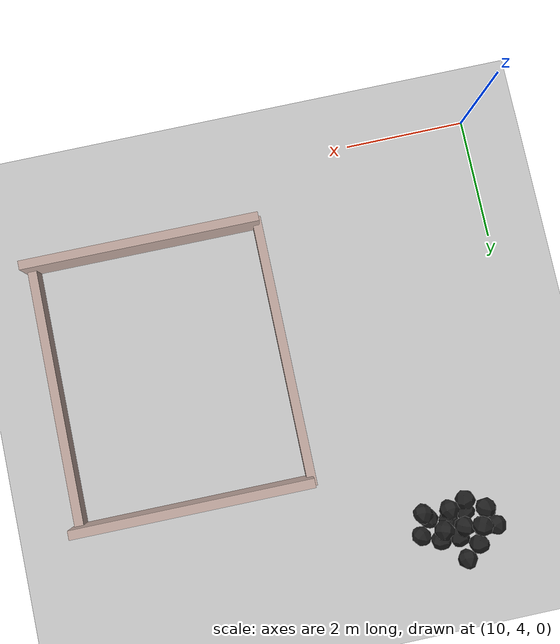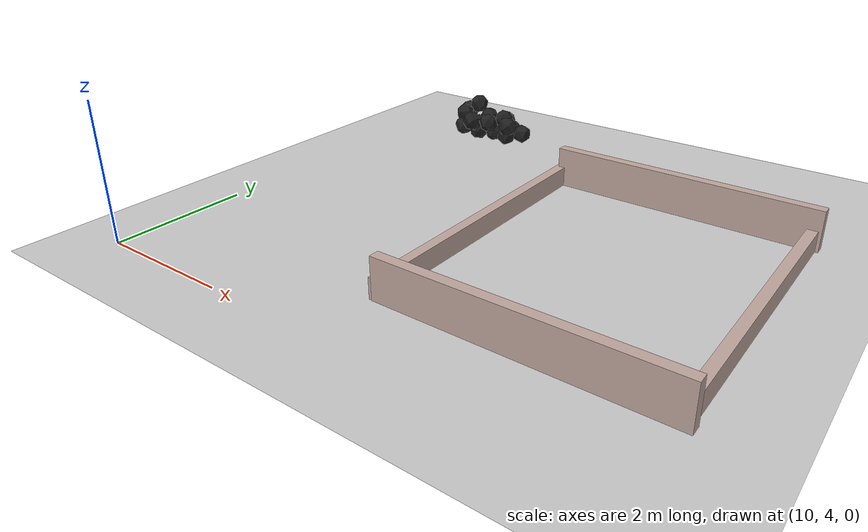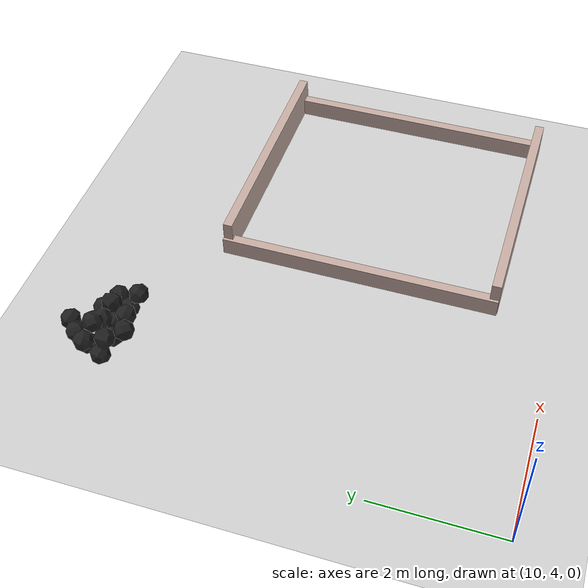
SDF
<sdf version="1.7">
 <world name="default">
  <model name="ground_plane">
   <static>1</static>
   <link name="link">
    <collision name="collision">
     <geometry><plane><normal>0 0 1</normal><size>100 100</size></plane></geometry>
     <surface><friction><ode><mu>100</mu><mu2>50</mu2></ode></friction></surface>
    </collision>
    <visual name="visual">
     <cast_shadows>0</cast_shadows>
     <geometry><plane><normal>0 0 1</normal><size>100 100</size></plane></geometry>
     <material>
      <script><uri>file://media/materials/scripts/gazebo.material</uri><name>Gazebo/Grey</name></script>
     </material>
    </visual>
   </link>
  </model>
  <model name="haoduomiantiaa_1">
   <link name="link_0">
    <inertial>
     <mass>0.2</mass>
     <inertia>
      <ixx>0.166667</ixx>
      <ixy>0</ixy>
      <ixz>0</ixz>
      <iyy>0.166667</iyy>
      <iyz>0</iyz>
      <izz>0.166667</izz>
     </inertia>
    </inertial>
    <visual name="visual">
     <geometry>
      <mesh>
       <uri>/home/lihaoyang/catkin_ws/src/pudong_gazebo/world/stl/haoduomianti.stl</uri>
       <scale>1 1 1</scale>
      </mesh>
     </geometry>
     <material>
      <lighting>1</lighting>
      <script><uri>file://media/materials/scripts/gazebo.material</uri><name>Gazebo/Black</name></script>
      <shader type="pixel"><normal_map>__default__</normal_map></shader>
      <ambient>0.3 0.3 0.3 1</ambient>
      <diffuse>0.7 0.7 0.7 1</diffuse>
      <specular>0.01 0.01 0.01 1</specular>
      <emissive>0 0 0 1</emissive>
     </material>
    </visual>
    <collision name="collision">
     <geometry>
      <mesh>
       <uri>/home/lihaoyang/catkin_ws/src/pudong_gazebo/world/stl/haoduomianti.stl</uri>
       <scale>1 1 1</scale>
      </mesh>
     </geometry>
     <surface>
      <friction>
       <ode><mu>1</mu><mu2>1</mu2><fdir1>0 0 0</fdir1><slip1>0</slip1><slip2>0</slip2></ode>
       <torsional>
        <coefficient>1</coefficient>
        <patch_radius>0</patch_radius>
        <surface_radius>0</surface_radius>
        <use_patch_radius>1</use_patch_radius>
        <ode><slip>0</slip></ode>
       </torsional>
      </friction>
      <bounce><restitution_coefficient>0</restitution_coefficient><threshold>1e+06</threshold></bounce>
      <contact>
       <collide_without_contact>0</collide_without_contact>
       <collide_without_contact_bitmask>1</collide_without_contact_bitmask>
       <collide_bitmask>1</collide_bitmask>
       <ode>
        <soft_cfm>0</soft_cfm>
        <soft_erp>0.2</soft_erp>
        <kp>1e+13</kp>
        <kd>1</kd>
        <max_vel>0.01</max_vel>
        <min_depth>0</min_depth>
       </ode>
       <bullet>
        <split_impulse>1</split_impulse>
        <split_impulse_penetration_threshold>-0.01</split_impulse_penetration_threshold>
        <soft_cfm>0</soft_cfm>
        <soft_erp>0.2</soft_erp>
        <kp>1e+13</kp>
        <kd>1</kd>
       </bullet>
      </contact>
     </surface>
    </collision>
   </link>
   <static>0</static>
   <pose>11.1953 10.3549 0.170525 0.635378 -0.464967 -1.89536</pose>
  </model>
  <model name="haoduomiantiaa_2">
   <link name="link_0">
    <inertial>
     <mass>0.2</mass>
     <inertia>
      <ixx>0.166667</ixx>
      <ixy>0</ixy>
      <ixz>0</ixz>
      <iyy>0.166667</iyy>
      <iyz>0</iyz>
      <izz>0.166667</izz>
     </inertia>
    </inertial>
    <visual name="visual">
     <geometry>
      <mesh>
       <uri>/home/lihaoyang/catkin_ws/src/pudong_gazebo/world/stl/haoduomianti.stl</uri>
       <scale>1 1 1</scale>
      </mesh>
     </geometry>
     <material>
      <lighting>1</lighting>
      <script><uri>file://media/materials/scripts/gazebo.material</uri><name>Gazebo/Black</name></script>
      <shader type="pixel"><normal_map>__default__</normal_map></shader>
      <ambient>0.3 0.3 0.3 1</ambient>
      <diffuse>0.7 0.7 0.7 1</diffuse>
      <specular>0.01 0.01 0.01 1</specular>
      <emissive>0 0 0 1</emissive>
     </material>
    </visual>
    <collision name="collision">
     <geometry>
      <mesh>
       <uri>/home/lihaoyang/catkin_ws/src/pudong_gazebo/world/stl/haoduomianti.stl</uri>
       <scale>1 1 1</scale>
      </mesh>
     </geometry>
     <surface>
      <friction>
       <ode><mu>1</mu><mu2>1</mu2><fdir1>0 0 0</fdir1><slip1>0</slip1><slip2>0</slip2></ode>
       <torsional>
        <coefficient>1</coefficient>
        <patch_radius>0</patch_radius>
        <surface_radius>0</surface_radius>
        <use_patch_radius>1</use_patch_radius>
        <ode><slip>0</slip></ode>
       </torsional>
      </friction>
      <bounce><restitution_coefficient>0</restitution_coefficient><threshold>1e+06</threshold></bounce>
      <contact>
       <collide_without_contact>0</collide_without_contact>
       <collide_without_contact_bitmask>1</collide_without_contact_bitmask>
       <collide_bitmask>1</collide_bitmask>
       <ode>
        <soft_cfm>0</soft_cfm>
        <soft_erp>0.2</soft_erp>
        <kp>1e+13</kp>
        <kd>1</kd>
        <max_vel>0.01</max_vel>
        <min_depth>0</min_depth>
       </ode>
       <bullet>
        <split_impulse>1</split_impulse>
        <split_impulse_penetration_threshold>-0.01</split_impulse_penetration_threshold>
        <soft_cfm>0</soft_cfm>
        <soft_erp>0.2</soft_erp>
        <kp>1e+13</kp>
        <kd>1</kd>
       </bullet>
      </contact>
     </surface>
    </collision>
   </link>
   <static>0</static>
   <pose>11.3877 10.9048 -0.079136 0.779753 -0.661702 0.766192</pose>
  </model>
  <model name="haoduomiantiaa_5">
   <link name="link_0">
    <inertial>
     <mass>0.2</mass>
     <inertia>
      <ixx>0.166667</ixx>
      <ixy>0</ixy>
      <ixz>0</ixz>
      <iyy>0.166667</iyy>
      <iyz>0</iyz>
      <izz>0.166667</izz>
     </inertia>
    </inertial>
    <visual name="visual">
     <geometry>
      <mesh>
       <uri>/home/lihaoyang/catkin_ws/src/pudong_gazebo/world/stl/haoduomianti.stl</uri>
       <scale>1 1 1</scale>
      </mesh>
     </geometry>
     <material>
      <lighting>1</lighting>
      <script><uri>file://media/materials/scripts/gazebo.material</uri><name>Gazebo/Black</name></script>
      <shader type="pixel"><normal_map>__default__</normal_map></shader>
      <ambient>0.3 0.3 0.3 1</ambient>
      <diffuse>0.7 0.7 0.7 1</diffuse>
      <specular>0.01 0.01 0.01 1</specular>
      <emissive>0 0 0 1</emissive>
     </material>
    </visual>
    <collision name="collision">
     <geometry>
      <mesh>
       <uri>/home/lihaoyang/catkin_ws/src/pudong_gazebo/world/stl/haoduomianti.stl</uri>
       <scale>1 1 1</scale>
      </mesh>
     </geometry>
     <surface>
      <friction>
       <ode><mu>1</mu><mu2>1</mu2><fdir1>0 0 0</fdir1><slip1>0</slip1><slip2>0</slip2></ode>
       <torsional>
        <coefficient>1</coefficient>
        <patch_radius>0</patch_radius>
        <surface_radius>0</surface_radius>
        <use_patch_radius>1</use_patch_radius>
        <ode><slip>0</slip></ode>
       </torsional>
      </friction>
      <bounce><restitution_coefficient>0</restitution_coefficient><threshold>1e+06</threshold></bounce>
      <contact>
       <collide_without_contact>0</collide_without_contact>
       <collide_without_contact_bitmask>1</collide_without_contact_bitmask>
       <collide_bitmask>1</collide_bitmask>
       <ode>
        <soft_cfm>0</soft_cfm>
        <soft_erp>0.2</soft_erp>
        <kp>1e+13</kp>
        <kd>1</kd>
        <max_vel>0.01</max_vel>
        <min_depth>0</min_depth>
       </ode>
       <bullet>
        <split_impulse>1</split_impulse>
        <split_impulse_penetration_threshold>-0.01</split_impulse_penetration_threshold>
        <soft_cfm>0</soft_cfm>
        <soft_erp>0.2</soft_erp>
        <kp>1e+13</kp>
        <kd>1</kd>
       </bullet>
      </contact>
     </surface>
    </collision>
   </link>
   <static>0</static>
   <pose>11.8802 10.4598 0.126878 1.11651 -0.806687 3.13979</pose>
  </model>
  <model name="haoduomiantiaa_8">
   <link name="link_0">
    <inertial>
     <mass>0.2</mass>
     <inertia>
      <ixx>0.166667</ixx>
      <ixy>0</ixy>
      <ixz>0</ixz>
      <iyy>0.166667</iyy>
      <iyz>0</iyz>
      <izz>0.166667</izz>
     </inertia>
    </inertial>
    <visual name="visual">
     <geometry>
      <mesh>
       <uri>/home/lihaoyang/catkin_ws/src/pudong_gazebo/world/stl/haoduomianti.stl</uri>
       <scale>1 1 1</scale>
      </mesh>
     </geometry>
     <material>
      <lighting>1</lighting>
      <script><uri>file://media/materials/scripts/gazebo.material</uri><name>Gazebo/Black</name></script>
      <shader type="pixel"><normal_map>__default__</normal_map></shader>
      <ambient>0.3 0.3 0.3 1</ambient>
      <diffuse>0.7 0.7 0.7 1</diffuse>
      <specular>0.01 0.01 0.01 1</specular>
      <emissive>0 0 0 1</emissive>
     </material>
    </visual>
    <collision name="collision">
     <geometry>
      <mesh>
       <uri>/home/lihaoyang/catkin_ws/src/pudong_gazebo/world/stl/haoduomianti.stl</uri>
       <scale>1 1 1</scale>
      </mesh>
     </geometry>
     <surface>
      <friction>
       <ode><mu>1</mu><mu2>1</mu2><fdir1>0 0 0</fdir1><slip1>0</slip1><slip2>0</slip2></ode>
       <torsional>
        <coefficient>1</coefficient>
        <patch_radius>0</patch_radius>
        <surface_radius>0</surface_radius>
        <use_patch_radius>1</use_patch_radius>
        <ode><slip>0</slip></ode>
       </torsional>
      </friction>
      <bounce><restitution_coefficient>0</restitution_coefficient><threshold>1e+06</threshold></bounce>
      <contact>
       <collide_without_contact>0</collide_without_contact>
       <collide_without_contact_bitmask>1</collide_without_contact_bitmask>
       <collide_bitmask>1</collide_bitmask>
       <ode>
        <soft_cfm>0</soft_cfm>
        <soft_erp>0.2</soft_erp>
        <kp>1e+13</kp>
        <kd>1</kd>
        <max_vel>0.01</max_vel>
        <min_depth>0</min_depth>
       </ode>
       <bullet>
        <split_impulse>1</split_impulse>
        <split_impulse_penetration_threshold>-0.01</split_impulse_penetration_threshold>
        <soft_cfm>0</soft_cfm>
        <soft_erp>0.2</soft_erp>
        <kp>1e+13</kp>
        <kd>1</kd>
       </bullet>
      </contact>
     </surface>
    </collision>
   </link>
   <static>0</static>
   <pose>12.1139 10.1936 0.135323 1.16591 -0.553289 1.40457</pose>
  </model>
  <model name="haoduomiantiaa_17">
   <link name="link_0">
    <inertial>
     <mass>0.2</mass>
     <inertia>
      <ixx>0.166667</ixx>
      <ixy>0</ixy>
      <ixz>0</ixz>
      <iyy>0.166667</iyy>
      <iyz>0</iyz>
      <izz>0.166667</izz>
     </inertia>
    </inertial>
    <visual name="visual">
     <geometry>
      <mesh>
       <uri>/home/lihaoyang/catkin_ws/src/pudong_gazebo/world/stl/haoduomianti.stl</uri>
       <scale>1 1 1</scale>
      </mesh>
     </geometry>
     <material>
      <lighting>1</lighting>
      <script><uri>file://media/materials/scripts/gazebo.material</uri><name>Gazebo/Black</name></script>
      <shader type="pixel"><normal_map>__default__</normal_map></shader>
      <ambient>0.3 0.3 0.3 1</ambient>
      <diffuse>0.7 0.7 0.7 1</diffuse>
      <specular>0.01 0.01 0.01 1</specular>
      <emissive>0 0 0 1</emissive>
     </material>
    </visual>
    <collision name="collision">
     <geometry>
      <mesh>
       <uri>/home/lihaoyang/catkin_ws/src/pudong_gazebo/world/stl/haoduomianti.stl</uri>
       <scale>1 1 1</scale>
      </mesh>
     </geometry>
     <surface>
      <friction>
       <ode><mu>1</mu><mu2>1</mu2><fdir1>0 0 0</fdir1><slip1>0</slip1><slip2>0</slip2></ode>
       <torsional>
        <coefficient>1</coefficient>
        <patch_radius>0</patch_radius>
        <surface_radius>0</surface_radius>
        <use_patch_radius>1</use_patch_radius>
        <ode><slip>0</slip></ode>
       </torsional>
      </friction>
      <bounce><restitution_coefficient>0</restitution_coefficient><threshold>1e+06</threshold></bounce>
      <contact>
       <collide_without_contact>0</collide_without_contact>
       <collide_without_contact_bitmask>1</collide_without_contact_bitmask>
       <collide_bitmask>1</collide_bitmask>
       <ode>
        <soft_cfm>0</soft_cfm>
        <soft_erp>0.2</soft_erp>
        <kp>1e+13</kp>
        <kd>1</kd>
        <max_vel>0.01</max_vel>
        <min_depth>0</min_depth>
       </ode>
       <bullet>
        <split_impulse>1</split_impulse>
        <split_impulse_penetration_threshold>-0.01</split_impulse_penetration_threshold>
        <soft_cfm>0</soft_cfm>
        <soft_erp>0.2</soft_erp>
        <kp>1e+13</kp>
        <kd>1</kd>
       </bullet>
      </contact>
     </surface>
    </collision>
   </link>
   <static>0</static>
   <pose>11.4044 10.5093 0.310138 1.04244 -0.759542 -1.6392</pose>
  </model>
  <model name="haoduomiantiaa_31">
   <link name="link_0">
    <inertial>
     <mass>0.2</mass>
     <inertia>
      <ixx>0.166667</ixx>
      <ixy>0</ixy>
      <ixz>0</ixz>
      <iyy>0.166667</iyy>
      <iyz>0</iyz>
      <izz>0.166667</izz>
     </inertia>
    </inertial>
    <visual name="visual">
     <geometry>
      <mesh>
       <uri>/home/lihaoyang/catkin_ws/src/pudong_gazebo/world/stl/haoduomianti.stl</uri>
       <scale>1 1 1</scale>
      </mesh>
     </geometry>
     <material>
      <lighting>1</lighting>
      <script><uri>file://media/materials/scripts/gazebo.material</uri><name>Gazebo/Black</name></script>
      <shader type="pixel"><normal_map>__default__</normal_map></shader>
      <ambient>0.3 0.3 0.3 1</ambient>
      <diffuse>0.7 0.7 0.7 1</diffuse>
      <specular>0.01 0.01 0.01 1</specular>
      <emissive>0 0 0 1</emissive>
     </material>
    </visual>
    <collision name="collision">
     <geometry>
      <mesh>
       <uri>/home/lihaoyang/catkin_ws/src/pudong_gazebo/world/stl/haoduomianti.stl</uri>
       <scale>1 1 1</scale>
      </mesh>
     </geometry>
     <surface>
      <friction>
       <ode><mu>1</mu><mu2>1</mu2><fdir1>0 0 0</fdir1><slip1>0</slip1><slip2>0</slip2></ode>
       <torsional>
        <coefficient>1</coefficient>
        <patch_radius>0</patch_radius>
        <surface_radius>0</surface_radius>
        <use_patch_radius>1</use_patch_radius>
        <ode><slip>0</slip></ode>
       </torsional>
      </friction>
      <bounce><restitution_coefficient>0</restitution_coefficient><threshold>1e+06</threshold></bounce>
      <contact>
       <collide_without_contact>0</collide_without_contact>
       <collide_without_contact_bitmask>1</collide_without_contact_bitmask>
       <collide_bitmask>1</collide_bitmask>
       <ode>
        <soft_cfm>0</soft_cfm>
        <soft_erp>0.2</soft_erp>
        <kp>1e+13</kp>
        <kd>1</kd>
        <max_vel>0.01</max_vel>
        <min_depth>0</min_depth>
       </ode>
       <bullet>
        <split_impulse>1</split_impulse>
        <split_impulse_penetration_threshold>-0.01</split_impulse_penetration_threshold>
        <soft_cfm>0</soft_cfm>
        <soft_erp>0.2</soft_erp>
        <kp>1e+13</kp>
        <kd>1</kd>
       </bullet>
      </contact>
     </surface>
    </collision>
   </link>
   <static>0</static>
   <pose>11.6575 10.7363 -0.115924 0.785138 -0.615675 -1.24641</pose>
  </model>
  <model name="haoduomiantiaa_43">
   <link name="link_0">
    <inertial>
     <mass>0.2</mass>
     <inertia>
      <ixx>0.166667</ixx>
      <ixy>0</ixy>
      <ixz>0</ixz>
      <iyy>0.166667</iyy>
      <iyz>0</iyz>
      <izz>0.166667</izz>
     </inertia>
    </inertial>
    <visual name="visual">
     <geometry>
      <mesh>
       <uri>/home/lihaoyang/catkin_ws/src/pudong_gazebo/world/stl/haoduomianti.stl</uri>
       <scale>1 1 1</scale>
      </mesh>
     </geometry>
     <material>
      <lighting>1</lighting>
      <script><uri>file://media/materials/scripts/gazebo.material</uri><name>Gazebo/Black</name></script>
      <shader type="pixel"><normal_map>__default__</normal_map></shader>
      <ambient>0.3 0.3 0.3 1</ambient>
      <diffuse>0.7 0.7 0.7 1</diffuse>
      <specular>0.01 0.01 0.01 1</specular>
      <emissive>0 0 0 1</emissive>
     </material>
    </visual>
    <collision name="collision">
     <geometry>
      <mesh>
       <uri>/home/lihaoyang/catkin_ws/src/pudong_gazebo/world/stl/haoduomianti.stl</uri>
       <scale>1 1 1</scale>
      </mesh>
     </geometry>
     <surface>
      <friction>
       <ode><mu>1</mu><mu2>1</mu2><fdir1>0 0 0</fdir1><slip1>0</slip1><slip2>0</slip2></ode>
       <torsional>
        <coefficient>1</coefficient>
        <patch_radius>0</patch_radius>
        <surface_radius>0</surface_radius>
        <use_patch_radius>1</use_patch_radius>
        <ode><slip>0</slip></ode>
       </torsional>
      </friction>
      <bounce><restitution_coefficient>0</restitution_coefficient><threshold>1e+06</threshold></bounce>
      <contact>
       <collide_without_contact>0</collide_without_contact>
       <collide_without_contact_bitmask>1</collide_without_contact_bitmask>
       <collide_bitmask>1</collide_bitmask>
       <ode>
        <soft_cfm>0</soft_cfm>
        <soft_erp>0.2</soft_erp>
        <kp>1e+13</kp>
        <kd>1</kd>
        <max_vel>0.01</max_vel>
        <min_depth>0</min_depth>
       </ode>
       <bullet>
        <split_impulse>1</split_impulse>
        <split_impulse_penetration_threshold>-0.01</split_impulse_penetration_threshold>
        <soft_cfm>0</soft_cfm>
        <soft_erp>0.2</soft_erp>
        <kp>1e+13</kp>
        <kd>1</kd>
       </bullet>
      </contact>
     </surface>
    </collision>
   </link>
   <static>0</static>
   <pose>11.1242 10.3815 -0.116042 0.777126 -0.619389 -2.42425</pose>
  </model>
  <model name="haoduomiantiaa_44">
   <link name="link_0">
    <inertial>
     <mass>0.2</mass>
     <inertia>
      <ixx>0.166667</ixx>
      <ixy>0</ixy>
      <ixz>0</ixz>
      <iyy>0.166667</iyy>
      <iyz>0</iyz>
      <izz>0.166667</izz>
     </inertia>
    </inertial>
    <visual name="visual">
     <geometry>
      <mesh>
       <uri>/home/lihaoyang/catkin_ws/src/pudong_gazebo/world/stl/haoduomianti.stl</uri>
       <scale>1 1 1</scale>
      </mesh>
     </geometry>
     <material>
      <lighting>1</lighting>
      <script><uri>file://media/materials/scripts/gazebo.material</uri><name>Gazebo/Black</name></script>
      <shader type="pixel"><normal_map>__default__</normal_map></shader>
      <ambient>0.3 0.3 0.3 1</ambient>
      <diffuse>0.7 0.7 0.7 1</diffuse>
      <specular>0.01 0.01 0.01 1</specular>
      <emissive>0 0 0 1</emissive>
     </material>
    </visual>
    <collision name="collision">
     <geometry>
      <mesh>
       <uri>/home/lihaoyang/catkin_ws/src/pudong_gazebo/world/stl/haoduomianti.stl</uri>
       <scale>1 1 1</scale>
      </mesh>
     </geometry>
     <surface>
      <friction>
       <ode><mu>1</mu><mu2>1</mu2><fdir1>0 0 0</fdir1><slip1>0</slip1><slip2>0</slip2></ode>
       <torsional>
        <coefficient>1</coefficient>
        <patch_radius>0</patch_radius>
        <surface_radius>0</surface_radius>
        <use_patch_radius>1</use_patch_radius>
        <ode><slip>0</slip></ode>
       </torsional>
      </friction>
      <bounce><restitution_coefficient>0</restitution_coefficient><threshold>1e+06</threshold></bounce>
      <contact>
       <collide_without_contact>0</collide_without_contact>
       <collide_without_contact_bitmask>1</collide_without_contact_bitmask>
       <collide_bitmask>1</collide_bitmask>
       <ode>
        <soft_cfm>0</soft_cfm>
        <soft_erp>0.2</soft_erp>
        <kp>1e+13</kp>
        <kd>1</kd>
        <max_vel>0.01</max_vel>
        <min_depth>0</min_depth>
       </ode>
       <bullet>
        <split_impulse>1</split_impulse>
        <split_impulse_penetration_threshold>-0.01</split_impulse_penetration_threshold>
        <soft_cfm>0</soft_cfm>
        <soft_erp>0.2</soft_erp>
        <kp>1e+13</kp>
        <kd>1</kd>
       </bullet>
      </contact>
     </surface>
    </collision>
   </link>
   <static>0</static>
   <pose>11.4821 10.3508 -0.121225 0.783665 -0.61123 -3.13993</pose>
  </model>
  <model name="haoduomiantiaa_48">
   <link name="link_0">
    <inertial>
     <mass>0.2</mass>
     <inertia>
      <ixx>0.166667</ixx>
      <ixy>0</ixy>
      <ixz>0</ixz>
      <iyy>0.166667</iyy>
      <iyz>0</iyz>
      <izz>0.166667</izz>
     </inertia>
    </inertial>
    <visual name="visual">
     <geometry>
      <mesh>
       <uri>/home/lihaoyang/catkin_ws/src/pudong_gazebo/world/stl/haoduomianti.stl</uri>
       <scale>1 1 1</scale>
      </mesh>
     </geometry>
     <material>
      <lighting>1</lighting>
      <script><uri>file://media/materials/scripts/gazebo.material</uri><name>Gazebo/Black</name></script>
      <shader type="pixel"><normal_map>__default__</normal_map></shader>
      <ambient>0.3 0.3 0.3 1</ambient>
      <diffuse>0.7 0.7 0.7 1</diffuse>
      <specular>0.01 0.01 0.01 1</specular>
      <emissive>0 0 0 1</emissive>
     </material>
    </visual>
    <collision name="collision">
     <geometry>
      <mesh>
       <uri>/home/lihaoyang/catkin_ws/src/pudong_gazebo/world/stl/haoduomianti.stl</uri>
       <scale>1 1 1</scale>
      </mesh>
     </geometry>
     <surface>
      <friction>
       <ode><mu>1</mu><mu2>1</mu2><fdir1>0 0 0</fdir1><slip1>0</slip1><slip2>0</slip2></ode>
       <torsional>
        <coefficient>1</coefficient>
        <patch_radius>0</patch_radius>
        <surface_radius>0</surface_radius>
        <use_patch_radius>1</use_patch_radius>
        <ode><slip>0</slip></ode>
       </torsional>
      </friction>
      <bounce><restitution_coefficient>0</restitution_coefficient><threshold>1e+06</threshold></bounce>
      <contact>
       <collide_without_contact>0</collide_without_contact>
       <collide_without_contact_bitmask>1</collide_without_contact_bitmask>
       <collide_bitmask>1</collide_bitmask>
       <ode>
        <soft_cfm>0</soft_cfm>
        <soft_erp>0.2</soft_erp>
        <kp>1e+13</kp>
        <kd>1</kd>
        <max_vel>0.01</max_vel>
        <min_depth>0</min_depth>
       </ode>
       <bullet>
        <split_impulse>1</split_impulse>
        <split_impulse_penetration_threshold>-0.01</split_impulse_penetration_threshold>
        <soft_cfm>0</soft_cfm>
        <soft_erp>0.2</soft_erp>
        <kp>1e+13</kp>
        <kd>1</kd>
       </bullet>
      </contact>
     </surface>
    </collision>
   </link>
   <static>0</static>
   <pose>11.606 11.0997 -0.119111 0.785447 -0.615072 1.53921</pose>
  </model>
  <model name="haoduomiantiaa_52">
   <link name="link_0">
    <inertial>
     <mass>0.2</mass>
     <inertia>
      <ixx>0.166667</ixx>
      <ixy>0</ixy>
      <ixz>0</ixz>
      <iyy>0.166667</iyy>
      <iyz>0</iyz>
      <izz>0.166667</izz>
     </inertia>
    </inertial>
    <visual name="visual">
     <geometry>
      <mesh>
       <uri>/home/lihaoyang/catkin_ws/src/pudong_gazebo/world/stl/haoduomianti.stl</uri>
       <scale>1 1 1</scale>
      </mesh>
     </geometry>
     <material>
      <lighting>1</lighting>
      <script><uri>file://media/materials/scripts/gazebo.material</uri><name>Gazebo/Black</name></script>
      <shader type="pixel"><normal_map>__default__</normal_map></shader>
      <ambient>0.3 0.3 0.3 1</ambient>
      <diffuse>0.7 0.7 0.7 1</diffuse>
      <specular>0.01 0.01 0.01 1</specular>
      <emissive>0 0 0 1</emissive>
     </material>
    </visual>
    <collision name="collision">
     <geometry>
      <mesh>
       <uri>/home/lihaoyang/catkin_ws/src/pudong_gazebo/world/stl/haoduomianti.stl</uri>
       <scale>1 1 1</scale>
      </mesh>
     </geometry>
     <surface>
      <friction>
       <ode><mu>1</mu><mu2>1</mu2><fdir1>0 0 0</fdir1><slip1>0</slip1><slip2>0</slip2></ode>
       <torsional>
        <coefficient>1</coefficient>
        <patch_radius>0</patch_radius>
        <surface_radius>0</surface_radius>
        <use_patch_radius>1</use_patch_radius>
        <ode><slip>0</slip></ode>
       </torsional>
      </friction>
      <bounce><restitution_coefficient>0</restitution_coefficient><threshold>1e+06</threshold></bounce>
      <contact>
       <collide_without_contact>0</collide_without_contact>
       <collide_without_contact_bitmask>1</collide_without_contact_bitmask>
       <collide_bitmask>1</collide_bitmask>
       <ode>
        <soft_cfm>0</soft_cfm>
        <soft_erp>0.2</soft_erp>
        <kp>1e+13</kp>
        <kd>1</kd>
        <max_vel>0.01</max_vel>
        <min_depth>0</min_depth>
       </ode>
       <bullet>
        <split_impulse>1</split_impulse>
        <split_impulse_penetration_threshold>-0.01</split_impulse_penetration_threshold>
        <soft_cfm>0</soft_cfm>
        <soft_erp>0.2</soft_erp>
        <kp>1e+13</kp>
        <kd>1</kd>
       </bullet>
      </contact>
     </surface>
    </collision>
   </link>
   <static>0</static>
   <pose>12.0352 10.3445 -0.105875 0.572744 -0.698897 -2.01609</pose>
  </model>
  <model name="haoduomiantiaa_53">
   <link name="link_0">
    <inertial>
     <mass>0.2</mass>
     <inertia>
      <ixx>0.166667</ixx>
      <ixy>0</ixy>
      <ixz>0</ixz>
      <iyy>0.166667</iyy>
      <iyz>0</iyz>
      <izz>0.166667</izz>
     </inertia>
    </inertial>
    <visual name="visual">
     <geometry>
      <mesh>
       <uri>/home/lihaoyang/catkin_ws/src/pudong_gazebo/world/stl/haoduomianti.stl</uri>
       <scale>1 1 1</scale>
      </mesh>
     </geometry>
     <material>
      <lighting>1</lighting>
      <script><uri>file://media/materials/scripts/gazebo.material</uri><name>Gazebo/Black</name></script>
      <shader type="pixel"><normal_map>__default__</normal_map></shader>
      <ambient>0.3 0.3 0.3 1</ambient>
      <diffuse>0.7 0.7 0.7 1</diffuse>
      <specular>0.01 0.01 0.01 1</specular>
      <emissive>0 0 0 1</emissive>
     </material>
    </visual>
    <collision name="collision">
     <geometry>
      <mesh>
       <uri>/home/lihaoyang/catkin_ws/src/pudong_gazebo/world/stl/haoduomianti.stl</uri>
       <scale>1 1 1</scale>
      </mesh>
     </geometry>
     <surface>
      <friction>
       <ode><mu>1</mu><mu2>1</mu2><fdir1>0 0 0</fdir1><slip1>0</slip1><slip2>0</slip2></ode>
       <torsional>
        <coefficient>1</coefficient>
        <patch_radius>0</patch_radius>
        <surface_radius>0</surface_radius>
        <use_patch_radius>1</use_patch_radius>
        <ode><slip>0</slip></ode>
       </torsional>
      </friction>
      <bounce><restitution_coefficient>0</restitution_coefficient><threshold>1e+06</threshold></bounce>
      <contact>
       <collide_without_contact>0</collide_without_contact>
       <collide_without_contact_bitmask>1</collide_without_contact_bitmask>
       <collide_bitmask>1</collide_bitmask>
       <ode>
        <soft_cfm>0</soft_cfm>
        <soft_erp>0.2</soft_erp>
        <kp>1e+13</kp>
        <kd>1</kd>
        <max_vel>0.01</max_vel>
        <min_depth>0</min_depth>
       </ode>
       <bullet>
        <split_impulse>1</split_impulse>
        <split_impulse_penetration_threshold>-0.01</split_impulse_penetration_threshold>
        <soft_cfm>0</soft_cfm>
        <soft_erp>0.2</soft_erp>
        <kp>1e+13</kp>
        <kd>1</kd>
       </bullet>
      </contact>
     </surface>
    </collision>
   </link>
   <static>0</static>
   <pose>11.6199 10.6376 0.125921 1.28933 -0.754088 -0.118504</pose>
  </model>
  <model name="haoduomiantiaa_56">
   <link name="link_0">
    <inertial>
     <mass>0.2</mass>
     <inertia>
      <ixx>0.166667</ixx>
      <ixy>0</ixy>
      <ixz>0</ixz>
      <iyy>0.166667</iyy>
      <iyz>0</iyz>
      <izz>0.166667</izz>
     </inertia>
    </inertial>
    <visual name="visual">
     <geometry>
      <mesh>
       <uri>/home/lihaoyang/catkin_ws/src/pudong_gazebo/world/stl/haoduomianti.stl</uri>
       <scale>1 1 1</scale>
      </mesh>
     </geometry>
     <material>
      <lighting>1</lighting>
      <script><uri>file://media/materials/scripts/gazebo.material</uri><name>Gazebo/Black</name></script>
      <shader type="pixel"><normal_map>__default__</normal_map></shader>
      <ambient>0.3 0.3 0.3 1</ambient>
      <diffuse>0.7 0.7 0.7 1</diffuse>
      <specular>0.01 0.01 0.01 1</specular>
      <emissive>0 0 0 1</emissive>
     </material>
    </visual>
    <collision name="collision">
     <geometry>
      <mesh>
       <uri>/home/lihaoyang/catkin_ws/src/pudong_gazebo/world/stl/haoduomianti.stl</uri>
       <scale>1 1 1</scale>
      </mesh>
     </geometry>
     <surface>
      <friction>
       <ode><mu>1</mu><mu2>1</mu2><fdir1>0 0 0</fdir1><slip1>0</slip1><slip2>0</slip2></ode>
       <torsional>
        <coefficient>1</coefficient>
        <patch_radius>0</patch_radius>
        <surface_radius>0</surface_radius>
        <use_patch_radius>1</use_patch_radius>
        <ode><slip>0</slip></ode>
       </torsional>
      </friction>
      <bounce><restitution_coefficient>0</restitution_coefficient><threshold>1e+06</threshold></bounce>
      <contact>
       <collide_without_contact>0</collide_without_contact>
       <collide_without_contact_bitmask>1</collide_without_contact_bitmask>
       <collide_bitmask>1</collide_bitmask>
       <ode>
        <soft_cfm>0</soft_cfm>
        <soft_erp>0.2</soft_erp>
        <kp>1e+13</kp>
        <kd>1</kd>
        <max_vel>0.01</max_vel>
        <min_depth>0</min_depth>
       </ode>
       <bullet>
        <split_impulse>1</split_impulse>
        <split_impulse_penetration_threshold>-0.01</split_impulse_penetration_threshold>
        <soft_cfm>0</soft_cfm>
        <soft_erp>0.2</soft_erp>
        <kp>1e+13</kp>
        <kd>1</kd>
       </bullet>
      </contact>
     </surface>
    </collision>
   </link>
   <static>0</static>
   <pose>11.1307 10.5984 0.138328 0.6729 -0.562237 1.91378</pose>
  </model>
  <model name="haoduomiantiaa_58">
   <link name="link_0">
    <inertial>
     <mass>0.2</mass>
     <inertia>
      <ixx>0.166667</ixx>
      <ixy>0</ixy>
      <ixz>0</ixz>
      <iyy>0.166667</iyy>
      <iyz>0</iyz>
      <izz>0.166667</izz>
     </inertia>
    </inertial>
    <visual name="visual">
     <geometry>
      <mesh>
       <uri>/home/lihaoyang/catkin_ws/src/pudong_gazebo/world/stl/haoduomianti.stl</uri>
       <scale>1 1 1</scale>
      </mesh>
     </geometry>
     <material>
      <lighting>1</lighting>
      <script><uri>file://media/materials/scripts/gazebo.material</uri><name>Gazebo/Black</name></script>
      <shader type="pixel"><normal_map>__default__</normal_map></shader>
      <ambient>0.3 0.3 0.3 1</ambient>
      <diffuse>0.7 0.7 0.7 1</diffuse>
      <specular>0.01 0.01 0.01 1</specular>
      <emissive>0 0 0 1</emissive>
     </material>
    </visual>
    <collision name="collision">
     <geometry>
      <mesh>
       <uri>/home/lihaoyang/catkin_ws/src/pudong_gazebo/world/stl/haoduomianti.stl</uri>
       <scale>1 1 1</scale>
      </mesh>
     </geometry>
     <surface>
      <friction>
       <ode><mu>1</mu><mu2>1</mu2><fdir1>0 0 0</fdir1><slip1>0</slip1><slip2>0</slip2></ode>
       <torsional>
        <coefficient>1</coefficient>
        <patch_radius>0</patch_radius>
        <surface_radius>0</surface_radius>
        <use_patch_radius>1</use_patch_radius>
        <ode><slip>0</slip></ode>
       </torsional>
      </friction>
      <bounce><restitution_coefficient>0</restitution_coefficient><threshold>1e+06</threshold></bounce>
      <contact>
       <collide_without_contact>0</collide_without_contact>
       <collide_without_contact_bitmask>1</collide_without_contact_bitmask>
       <collide_bitmask>1</collide_bitmask>
       <ode>
        <soft_cfm>0</soft_cfm>
        <soft_erp>0.2</soft_erp>
        <kp>1e+13</kp>
        <kd>1</kd>
        <max_vel>0.01</max_vel>
        <min_depth>0</min_depth>
       </ode>
       <bullet>
        <split_impulse>1</split_impulse>
        <split_impulse_penetration_threshold>-0.01</split_impulse_penetration_threshold>
        <soft_cfm>0</soft_cfm>
        <soft_erp>0.2</soft_erp>
        <kp>1e+13</kp>
        <kd>1</kd>
       </bullet>
      </contact>
     </surface>
    </collision>
   </link>
   <static>0</static>
   <pose>11.9605 10.7267 -0.117984 0.785461 -0.615461 0.573063</pose>
  </model>
  <model name="haoduomiantiaa_85">
   <link name="link_0">
    <inertial>
     <mass>0.2</mass>
     <inertia>
      <ixx>0.166667</ixx>
      <ixy>0</ixy>
      <ixz>0</ixz>
      <iyy>0.166667</iyy>
      <iyz>0</iyz>
      <izz>0.166667</izz>
     </inertia>
    </inertial>
    <visual name="visual">
     <geometry>
      <mesh>
       <uri>/home/lihaoyang/catkin_ws/src/pudong_gazebo/world/stl/haoduomianti.stl</uri>
       <scale>1 1 1</scale>
      </mesh>
     </geometry>
     <material>
      <lighting>1</lighting>
      <script><uri>file://media/materials/scripts/gazebo.material</uri><name>Gazebo/Black</name></script>
      <shader type="pixel"><normal_map>__default__</normal_map></shader>
      <ambient>0.3 0.3 0.3 1</ambient>
      <diffuse>0.7 0.7 0.7 1</diffuse>
      <specular>0.01 0.01 0.01 1</specular>
      <emissive>0 0 0 1</emissive>
     </material>
    </visual>
    <collision name="collision">
     <geometry>
      <mesh>
       <uri>/home/lihaoyang/catkin_ws/src/pudong_gazebo/world/stl/haoduomianti.stl</uri>
       <scale>1 1 1</scale>
      </mesh>
     </geometry>
     <surface>
      <friction>
       <ode><mu>1</mu><mu2>1</mu2><fdir1>0 0 0</fdir1><slip1>0</slip1><slip2>0</slip2></ode>
       <torsional>
        <coefficient>1</coefficient>
        <patch_radius>0</patch_radius>
        <surface_radius>0</surface_radius>
        <use_patch_radius>1</use_patch_radius>
        <ode><slip>0</slip></ode>
       </torsional>
      </friction>
      <bounce><restitution_coefficient>0</restitution_coefficient><threshold>1e+06</threshold></bounce>
      <contact>
       <collide_without_contact>0</collide_without_contact>
       <collide_without_contact_bitmask>1</collide_without_contact_bitmask>
       <collide_bitmask>1</collide_bitmask>
       <ode>
        <soft_cfm>0</soft_cfm>
        <soft_erp>0.2</soft_erp>
        <kp>1e+13</kp>
        <kd>1</kd>
        <max_vel>0.01</max_vel>
        <min_depth>0</min_depth>
       </ode>
       <bullet>
        <split_impulse>1</split_impulse>
        <split_impulse_penetration_threshold>-0.01</split_impulse_penetration_threshold>
        <soft_cfm>0</soft_cfm>
        <soft_erp>0.2</soft_erp>
        <kp>1e+13</kp>
        <kd>1</kd>
       </bullet>
      </contact>
     </surface>
    </collision>
   </link>
   <static>0</static>
   <pose>11.7834 10.2092 0.100926 0.731148 -0.533265 1.67873</pose>
  </model>
  <model name="haoduomiantiaa_88">
   <link name="link_0">
    <inertial>
     <mass>0.2</mass>
     <inertia>
      <ixx>0.166667</ixx>
      <ixy>0</ixy>
      <ixz>0</ixz>
      <iyy>0.166667</iyy>
      <iyz>0</iyz>
      <izz>0.166667</izz>
     </inertia>
    </inertial>
    <visual name="visual">
     <geometry>
      <mesh>
       <uri>/home/lihaoyang/catkin_ws/src/pudong_gazebo/world/stl/haoduomianti.stl</uri>
       <scale>1 1 1</scale>
      </mesh>
     </geometry>
     <material>
      <lighting>1</lighting>
      <script><uri>file://media/materials/scripts/gazebo.material</uri><name>Gazebo/Black</name></script>
      <shader type="pixel"><normal_map>__default__</normal_map></shader>
      <ambient>0.3 0.3 0.3 1</ambient>
      <diffuse>0.7 0.7 0.7 1</diffuse>
      <specular>0.01 0.01 0.01 1</specular>
      <emissive>0 0 0 1</emissive>
     </material>
    </visual>
    <collision name="collision">
     <geometry>
      <mesh>
       <uri>/home/lihaoyang/catkin_ws/src/pudong_gazebo/world/stl/haoduomianti.stl</uri>
       <scale>1 1 1</scale>
      </mesh>
     </geometry>
     <surface>
      <friction>
       <ode><mu>1</mu><mu2>1</mu2><fdir1>0 0 0</fdir1><slip1>0</slip1><slip2>0</slip2></ode>
       <torsional>
        <coefficient>1</coefficient>
        <patch_radius>0</patch_radius>
        <surface_radius>0</surface_radius>
        <use_patch_radius>1</use_patch_radius>
        <ode><slip>0</slip></ode>
       </torsional>
      </friction>
      <bounce><restitution_coefficient>0</restitution_coefficient><threshold>1e+06</threshold></bounce>
      <contact>
       <collide_without_contact>0</collide_without_contact>
       <collide_without_contact_bitmask>1</collide_without_contact_bitmask>
       <collide_bitmask>1</collide_bitmask>
       <ode>
        <soft_cfm>0</soft_cfm>
        <soft_erp>0.2</soft_erp>
        <kp>1e+13</kp>
        <kd>1</kd>
        <max_vel>0.01</max_vel>
        <min_depth>0</min_depth>
       </ode>
       <bullet>
        <split_impulse>1</split_impulse>
        <split_impulse_penetration_threshold>-0.01</split_impulse_penetration_threshold>
        <soft_cfm>0</soft_cfm>
        <soft_erp>0.2</soft_erp>
        <kp>1e+13</kp>
        <kd>1</kd>
       </bullet>
      </contact>
     </surface>
    </collision>
   </link>
   <static>0</static>
   <pose>11.7714 10.4271 -0.115003 0.77303 -0.621249 -2.55014</pose>
  </model>
  <model name="haoduomiantiaa_89">
   <link name="link_0">
    <inertial>
     <mass>0.2</mass>
     <inertia>
      <ixx>0.166667</ixx>
      <ixy>0</ixy>
      <ixz>0</ixz>
      <iyy>0.166667</iyy>
      <iyz>0</iyz>
      <izz>0.166667</izz>
     </inertia>
    </inertial>
    <visual name="visual">
     <geometry>
      <mesh>
       <uri>/home/lihaoyang/catkin_ws/src/pudong_gazebo/world/stl/haoduomianti.stl</uri>
       <scale>1 1 1</scale>
      </mesh>
     </geometry>
     <material>
      <lighting>1</lighting>
      <script><uri>file://media/materials/scripts/gazebo.material</uri><name>Gazebo/Black</name></script>
      <shader type="pixel"><normal_map>__default__</normal_map></shader>
      <ambient>0.3 0.3 0.3 1</ambient>
      <diffuse>0.7 0.7 0.7 1</diffuse>
      <specular>0.01 0.01 0.01 1</specular>
      <emissive>0 0 0 1</emissive>
     </material>
    </visual>
    <collision name="collision">
     <geometry>
      <mesh>
       <uri>/home/lihaoyang/catkin_ws/src/pudong_gazebo/world/stl/haoduomianti.stl</uri>
       <scale>1 1 1</scale>
      </mesh>
     </geometry>
     <surface>
      <friction>
       <ode><mu>1</mu><mu2>1</mu2><fdir1>0 0 0</fdir1><slip1>0</slip1><slip2>0</slip2></ode>
       <torsional>
        <coefficient>1</coefficient>
        <patch_radius>0</patch_radius>
        <surface_radius>0</surface_radius>
        <use_patch_radius>1</use_patch_radius>
        <ode><slip>0</slip></ode>
       </torsional>
      </friction>
      <bounce><restitution_coefficient>0</restitution_coefficient><threshold>1e+06</threshold></bounce>
      <contact>
       <collide_without_contact>0</collide_without_contact>
       <collide_without_contact_bitmask>1</collide_without_contact_bitmask>
       <collide_bitmask>1</collide_bitmask>
       <ode>
        <soft_cfm>0</soft_cfm>
        <soft_erp>0.2</soft_erp>
        <kp>1e+13</kp>
        <kd>1</kd>
        <max_vel>0.01</max_vel>
        <min_depth>0</min_depth>
       </ode>
       <bullet>
        <split_impulse>1</split_impulse>
        <split_impulse_penetration_threshold>-0.01</split_impulse_penetration_threshold>
        <soft_cfm>0</soft_cfm>
        <soft_erp>0.2</soft_erp>
        <kp>1e+13</kp>
        <kd>1</kd>
       </bullet>
      </contact>
     </surface>
    </collision>
   </link>
   <static>0</static>
   <pose>12.257 10.5915 -0.115492 0.785245 -0.615294 0.156058</pose>
  </model>
  <model name="haoduomiantiaa_93">
   <link name="link_0">
    <inertial>
     <mass>0.2</mass>
     <inertia>
      <ixx>0.166667</ixx>
      <ixy>0</ixy>
      <ixz>0</ixz>
      <iyy>0.166667</iyy>
      <iyz>0</iyz>
      <izz>0.166667</izz>
     </inertia>
    </inertial>
    <visual name="visual">
     <geometry>
      <mesh>
       <uri>/home/lihaoyang/catkin_ws/src/pudong_gazebo/world/stl/haoduomianti.stl</uri>
       <scale>1 1 1</scale>
      </mesh>
     </geometry>
     <material>
      <lighting>1</lighting>
      <script><uri>file://media/materials/scripts/gazebo.material</uri><name>Gazebo/Black</name></script>
      <shader type="pixel"><normal_map>__default__</normal_map></shader>
      <ambient>0.3 0.3 0.3 1</ambient>
      <diffuse>0.7 0.7 0.7 1</diffuse>
      <specular>0.01 0.01 0.01 1</specular>
      <emissive>0 0 0 1</emissive>
     </material>
    </visual>
    <collision name="collision">
     <geometry>
      <mesh>
       <uri>/home/lihaoyang/catkin_ws/src/pudong_gazebo/world/stl/haoduomianti.stl</uri>
       <scale>1 1 1</scale>
      </mesh>
     </geometry>
     <surface>
      <friction>
       <ode><mu>1</mu><mu2>1</mu2><fdir1>0 0 0</fdir1><slip1>0</slip1><slip2>0</slip2></ode>
       <torsional>
        <coefficient>1</coefficient>
        <patch_radius>0</patch_radius>
        <surface_radius>0</surface_radius>
        <use_patch_radius>1</use_patch_radius>
        <ode><slip>0</slip></ode>
       </torsional>
      </friction>
      <bounce><restitution_coefficient>0</restitution_coefficient><threshold>1e+06</threshold></bounce>
      <contact>
       <collide_without_contact>0</collide_without_contact>
       <collide_without_contact_bitmask>1</collide_without_contact_bitmask>
       <collide_bitmask>1</collide_bitmask>
       <ode>
        <soft_cfm>0</soft_cfm>
        <soft_erp>0.2</soft_erp>
        <kp>1e+13</kp>
        <kd>1</kd>
        <max_vel>0.01</max_vel>
        <min_depth>0</min_depth>
       </ode>
       <bullet>
        <split_impulse>1</split_impulse>
        <split_impulse_penetration_threshold>-0.01</split_impulse_penetration_threshold>
        <soft_cfm>0</soft_cfm>
        <soft_erp>0.2</soft_erp>
        <kp>1e+13</kp>
        <kd>1</kd>
       </bullet>
      </contact>
     </surface>
    </collision>
   </link>
   <static>0</static>
   <pose>11.4593 10.1549 0.099849 0.701014 -0.50162 -1.24168</pose>
  </model>
  <model name="haoduomiantiaa_131">
   <link name="link_0">
    <inertial>
     <mass>0.2</mass>
     <inertia>
      <ixx>0.166667</ixx>
      <ixy>0</ixy>
      <ixz>0</ixz>
      <iyy>0.166667</iyy>
      <iyz>0</iyz>
      <izz>0.166667</izz>
     </inertia>
    </inertial>
    <visual name="visual">
     <geometry>
      <mesh>
       <uri>/home/lihaoyang/catkin_ws/src/pudong_gazebo/world/stl/haoduomianti.stl</uri>
       <scale>1 1 1</scale>
      </mesh>
     </geometry>
     <material>
      <lighting>1</lighting>
      <script><uri>file://media/materials/scripts/gazebo.material</uri><name>Gazebo/Black</name></script>
      <shader type="pixel"><normal_map>__default__</normal_map></shader>
      <ambient>0.3 0.3 0.3 1</ambient>
      <diffuse>0.7 0.7 0.7 1</diffuse>
      <specular>0.01 0.01 0.01 1</specular>
      <emissive>0 0 0 1</emissive>
     </material>
    </visual>
    <collision name="collision">
     <geometry>
      <mesh>
       <uri>/home/lihaoyang/catkin_ws/src/pudong_gazebo/world/stl/haoduomianti.stl</uri>
       <scale>1 1 1</scale>
      </mesh>
     </geometry>
     <surface>
      <friction>
       <ode><mu>1</mu><mu2>1</mu2><fdir1>0 0 0</fdir1><slip1>0</slip1><slip2>0</slip2></ode>
       <torsional>
        <coefficient>1</coefficient>
        <patch_radius>0</patch_radius>
        <surface_radius>0</surface_radius>
        <use_patch_radius>1</use_patch_radius>
        <ode><slip>0</slip></ode>
       </torsional>
      </friction>
      <bounce><restitution_coefficient>0</restitution_coefficient><threshold>1e+06</threshold></bounce>
      <contact>
       <collide_without_contact>0</collide_without_contact>
       <collide_without_contact_bitmask>1</collide_without_contact_bitmask>
       <collide_bitmask>1</collide_bitmask>
       <ode>
        <soft_cfm>0</soft_cfm>
        <soft_erp>0.2</soft_erp>
        <kp>1e+13</kp>
        <kd>1</kd>
        <max_vel>0.01</max_vel>
        <min_depth>0</min_depth>
       </ode>
       <bullet>
        <split_impulse>1</split_impulse>
        <split_impulse_penetration_threshold>-0.01</split_impulse_penetration_threshold>
        <soft_cfm>0</soft_cfm>
        <soft_erp>0.2</soft_erp>
        <kp>1e+13</kp>
        <kd>1</kd>
       </bullet>
      </contact>
     </surface>
    </collision>
   </link>
   <static>0</static>
   <pose>11.262 10.6438 -0.117192 0.813346 -0.628777 -0.316509</pose>
  </model>
  <model name="Lence_0">
   <pose>11.9998 11.2746 0 0 -0 -1.57383</pose>
   <link name="Wall_12">
    <collision name="Wall_12_Collision">
     <geometry><box><size>3.94165 0.15 0.6</size></box></geometry>
     <pose>0 0 0.3 0 -0 0</pose>
    </collision>
    <visual name="Wall_12_Visual">
     <pose>0 0 0.3 0 -0 0</pose>
     <geometry><box><size>3.94165 0.15 0.6</size></box></geometry>
     <material>
      <script><uri>file://media/materials/scripts/gazebo.material</uri><name>Gazebo/Grey</name></script>
      <ambient>0.760784 0.662745 0.627451 1</ambient>
     </material>
     <meta><layer>0</layer></meta>
    </visual>
    <pose>1.9225 3.755 0 0 -0 -1.5708</pose>
   </link>
   <link name="Wall_17">
    <collision name="Wall_17_Collision">
     <geometry><box><size>4.5 0.15 0.3</size></box></geometry>
     <pose>0 0 0.15 0 -0 0</pose>
    </collision>
    <visual name="Wall_17_Visual">
     <pose>0 0 0.15 0 -0 0</pose>
     <geometry><box><size>4.5 0.15 0.3</size></box></geometry>
     <material>
      <script><uri>file://media/materials/scripts/gazebo.material</uri><name>Gazebo/Grey</name></script>
      <ambient>0.760784 0.662745 0.627451 1</ambient>
     </material>
     <meta><layer>0</layer></meta>
    </visual>
    <pose>4.0975 5.61014 0 0 -0 0</pose>
   </link>
   <link name="Wall_18">
    <collision name="Wall_18_Collision">
     <geometry><box><size>3.94165 0.15 0.6</size></box></geometry>
     <pose>0 0 0.3 0 -0 0</pose>
    </collision>
    <visual name="Wall_18_Visual">
     <pose>0 0 0.3 0 -0 0</pose>
     <geometry><box><size>3.94165 0.15 0.6</size></box></geometry>
     <material>
      <script><uri>file://media/materials/scripts/gazebo.material</uri><name>Gazebo/Grey</name></script>
      <ambient>0.760784 0.662745 0.627451 1</ambient>
     </material>
     <meta><layer>0</layer></meta>
    </visual>
    <pose>6.2725 3.755 0 0 -0 -1.5708</pose>
   </link>
   <link name="Wall_8">
    <collision name="Wall_8_Collision">
     <geometry><box><size>4.5 0.15 0.3</size></box></geometry>
     <pose>0 0 0.15 0 -0 0</pose>
    </collision>
    <visual name="Wall_8_Visual">
     <pose>0 0 0.15 0 -0 0</pose>
     <geometry><box><size>4.5 0.15 0.3</size></box></geometry>
     <material>
      <script><uri>file://media/materials/scripts/gazebo.material</uri><name>Gazebo/Grey</name></script>
      <ambient>0.760784 0.662745 0.627451 1</ambient>
     </material>
     <meta><layer>0</layer></meta>
    </visual>
    <pose>4.0905 1.81317 0 0 -0 3.14159</pose>
   </link>
   <static>1</static>
  </model>
 </world>
</sdf>
